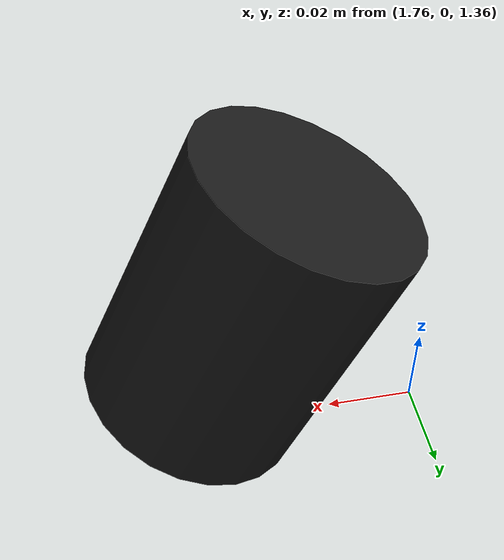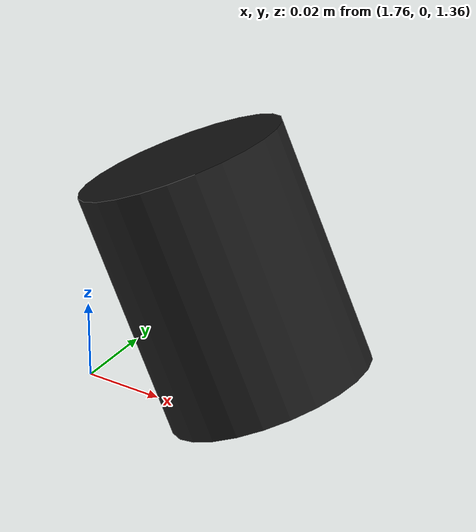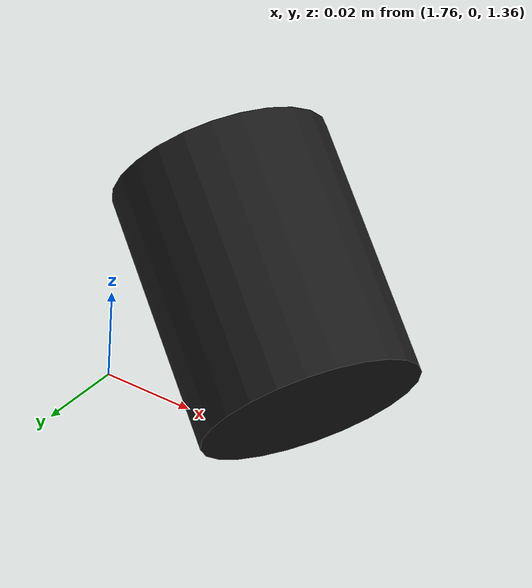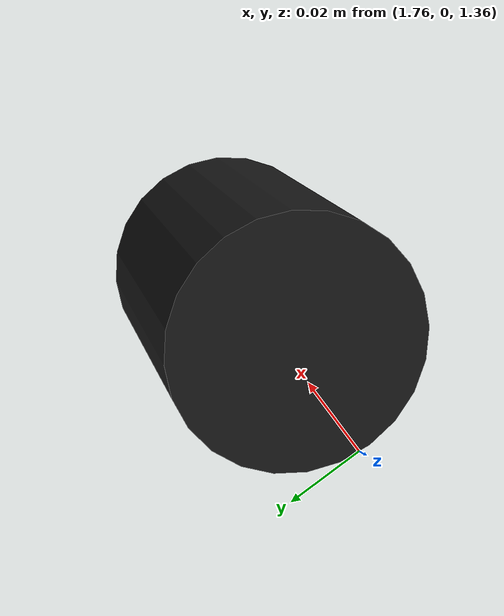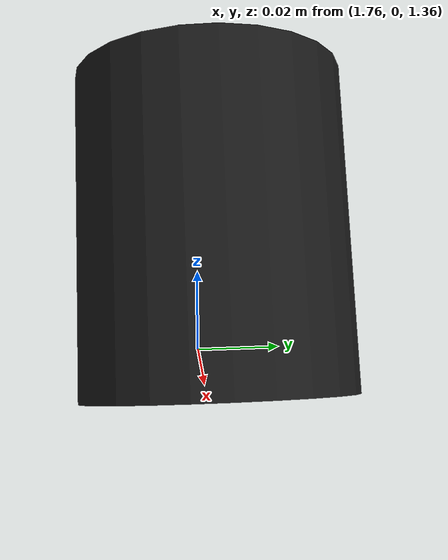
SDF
<?xml version="1.0"?>
<sdf version="1.6">
  <model name="rgb_camera">
    <static>true</static>

    <!--
      Pose: x y z roll pitch yaw (radians)
      Sitting 1.8 m in front of the arm (along X), 1.4 m up, pitched 25° down.
      Yaw = π so the camera faces the arm (toward negative X).
    -->
    <pose>1.8 0.0 1.4  0 0.436 3.14159</pose>

    <link name="camera_link">
      <!-- Minimal inertial so Gazebo does not warn about massless links -->
      <inertial>
        <mass>0.001</mass>
        <inertia>
          <ixx>0.0001</ixx><ixy>0</ixy><ixz>0</ixz>
          <iyy>0.0001</iyy><iyz>0</iyz>
          <izz>0.0001</izz>
        </inertia>
      </inertial>

      <!-- Visual cylinder so the camera is visible in the Gazebo GUI -->
      <visual name="camera_visual">
        <geometry>
          <cylinder>
            <radius>0.025</radius>
            <length>0.06</length>
          </cylinder>
        </geometry>
        <material>
          <ambient>0.1 0.1 0.1 1</ambient>
          <diffuse>0.1 0.1 0.1 1</diffuse>
        </material>
      </visual>

      <sensor name="rgb_camera_sensor" type="camera">
        <always_on>true</always_on>
        <update_rate>30</update_rate>   <!-- 30 Hz input; perception_node skips every 2nd -->
        <visualize>false</visualize>     <!-- set true to see frustum in Gazebo GUI -->

        <camera name="camera">
          <!-- 60° horizontal FOV ≈ typical webcam -->
          <horizontal_fov>1.0472</horizontal_fov>
          <image>
            <width>640</width>
            <height>480</height>
            <format>R8G8B8</format>
          </image>
          <clip>
            <near>0.05</near>
            <far>50.0</far>
          </clip>
          <!-- No distortion — clean sim image for YOLOv8 -->
          <distortion>
            <k1>0.0</k1><k2>0.0</k2><k3>0.0</k3>
            <p1>0.0</p1><p2>0.0</p2>
            <center>0.5 0.5</center>
          </distortion>
        </camera>

        <!--
          gazebo_ros_camera plugin — publishes sensor_msgs/Image to ROS 2.
          Works with Gazebo Classic (Gazebo 11) + ROS 2 Humble.
        -->
        <plugin name="camera_controller" filename="libgazebo_ros_camera.so">
          <ros>
            <!-- Empty namespace → topics at /camera/image_raw (no prefix) -->
            <namespace></namespace>
            <remapping>image_raw:=/camera/image_raw</remapping>
            <remapping>camera_info:=/camera/camera_info</remapping>
          </ros>
          <camera_name>camera</camera_name>
          <frame_name>camera_link</frame_name>
          <!-- Publish at native 30 Hz; set to 0 for sensor rate -->
          <update_rate>30.0</update_rate>
        </plugin>
      </sensor>
    </link>
  </model>
</sdf>
